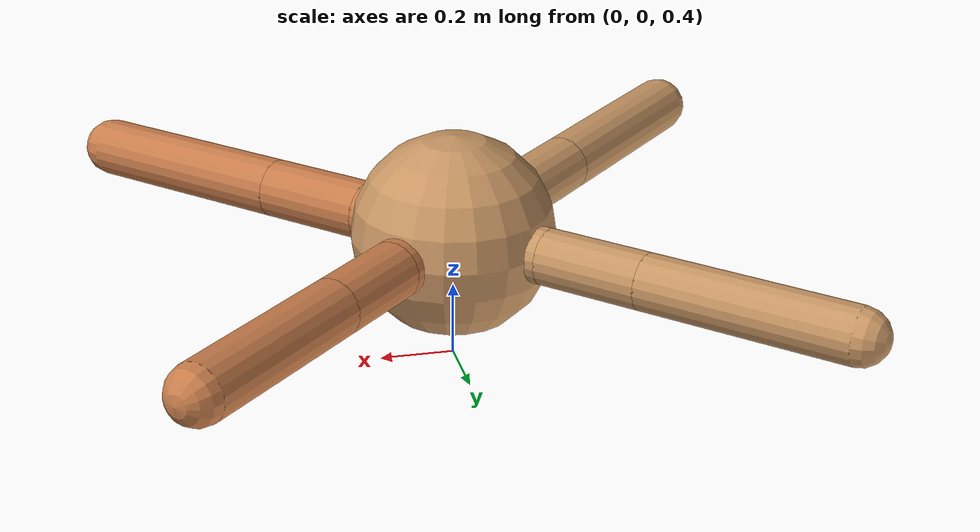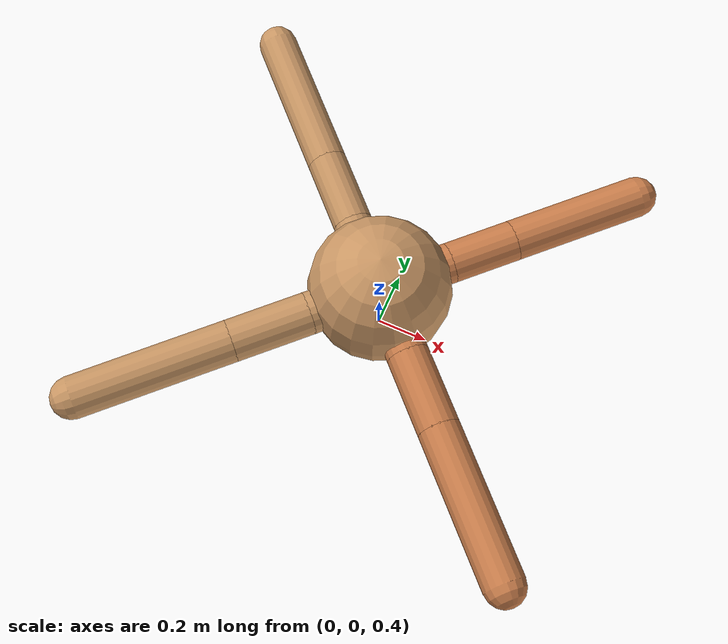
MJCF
<?xml version="1.0" ?>
<mujoco model="ant">

	<compiler angle="degree" coordinate="local" inertiafromgeom="true"/>

	<option integrator="RK4" timestep="0.01"/>

	<custom>

		<numeric data="0.0 0.0 0.55 1.0 0.0 0.0 0.0 0.0 1.0 0.0 -1.0 0.0 -1.0 0.0 1.0" name="init_qpos"/>

	</custom>

	<default>

		<joint armature="1" damping="1" limited="true"/>

		<geom conaffinity="0" condim="3" density="5.0" friction="1.5 0.1 0.1" margin="0.01" rgba="0.8 0.6 0.4 1"/>

	</default>

	<worldbody>

		<body name="torso" pos="0 0 0.75">

			<geom name="torso_geom" pos="0 0 0" size="0.27314779988957033" type="sphere"/>

			<!--joint armature="0" damping="0" limited="false" margin="0.01" name="root" pos="0 0 0" type="free"/-->

			<body name="front_left_leg" pos="0 0 0">

				<geom fromto="0 0 0 0.2 0.2 0" name="aux_1_geom" size="0.07778665469679098" type="capsule" rgba=".8 .5 .3 1"/>

				<body name="aux_1" pos="0.2 0.2 0">

					<joint axis="0 0 1" name="hip_1" pos="0.0 0.0 0.0" range="-40 40" type="hinge"/>

					<geom fromto="0 0 0 0.18135167400803154 0.18135167400803154 0" name="left_leg_geom" size="0.07778665469679098" type="capsule" rgba=".8 .5 .3 1"/>

					<body pos="0.18135167400803154 0.18135167400803154 0" name="front_left_foot">

						<joint axis="-1 1 0" name="ankle_1" pos="0.0 0.0 0.0" range="30 100" type="hinge"/>

						<geom fromto="0 0 0 0.3627033480160631 0.3627033480160631 0" name="left_ankle_geom" size="0.07778665469679098" type="capsule" rgba=".8 .5 .3 1"/>

					</body>

				</body>

			</body>

			<body name="front_right_leg" pos="0 0 0">

				<geom fromto="0 0 0 -0.2 0.2 0" name="aux_2_geom" size="0.07496647735807126" type="capsule"/>

				<body name="aux_2" pos="-0.2 0.2 0">

					<joint axis="0 0 1" name="hip_2" pos="0.0 0.0 0.0" range="-40 40" type="hinge"/>

					<geom fromto="0 0 0 -0.1985237699356004 0.1985237699356004 0" name="right_leg_geom" size="0.07496647735807126" type="capsule"/>

					<body pos="-0.1985237699356004 0.1985237699356004 0" name="front_right_foot">

						<joint axis="1 1 0" name="ankle_2" pos="0.0 0.0 0.0" range="-100 -30" type="hinge"/>

						<geom fromto="0 0 0 -0.3970475398712008 0.3970475398712008 0" name="right_ankle_geom" size="0.07496647735807126" type="capsule"/>

					</body>

				</body>

			</body>

			<body name="left_back_leg" pos="0 0 0">

				<geom fromto="0 0 0 -0.2 -0.2 0" name="aux_3_geom" size="0.08139243750693678" type="capsule"/>

				<body name="aux_3" pos="-0.2 -0.2 0">

					<joint axis="0 0 1" name="hip_3" pos="0.0 0.0 0.0" range="-40 40" type="hinge"/>

					<geom fromto="0 0 0 -0.21569208466020623 -0.21569208466020623 0" name="back_leg_geom" size="0.08139243750693678" type="capsule"/>

					<body pos="-0.21569208466020623 -0.21569208466020623 0" name="left_back_foot">

						<joint axis="-1 1 0" name="ankle_3" pos="0.0 0.0 0.0" range="-100 -30" type="hinge"/>

						<geom fromto="0 0 0 -0.43138416932041246 -0.43138416932041246 0" name="third_ankle_geom" size="0.08139243750693678" type="capsule"/>

					</body>

				</body>

			</body>

			<body name="right_back_leg" pos="0 0 0">

				<geom fromto="0 0 0 0.2 -0.2 0" name="aux_4_geom" size="0.08028266678807101" type="capsule" rgba=".8 .5 .3 1"/>

				<body name="aux_4" pos="0.2 -0.2 0">

					<joint axis="0 0 1" name="hip_4" pos="0.0 0.0 0.0" range="-40 40" type="hinge"/>

					<geom fromto="0 0 0 0.21330508759919875 -0.21330508759919875 0" name="rightback_leg_geom" size="0.08028266678807101" type="capsule" rgba=".8 .5 .3 1"/>

					<body pos="0.21330508759919875 -0.21330508759919875 0" name="right_back_foot">

						<joint axis="1 1 0" name="ankle_4" pos="0.0 0.0 0.0" range="30 100" type="hinge"/>

						<geom fromto="0 0 0 0.4266101751983975 -0.4266101751983975 0" name="fourth_ankle_geom" size="0.08028266678807101" type="capsule" rgba=".8 .5 .3 1"/>

					</body>

				</body>

			</body>

		</body>

	</worldbody>

	<actuator>

		<motor ctrllimited="true" ctrlrange="-1.0 1.0" joint="hip_4" gear="150"/>

		<motor ctrllimited="true" ctrlrange="-1.0 1.0" joint="ankle_4" gear="150"/>

		<motor ctrllimited="true" ctrlrange="-1.0 1.0" joint="hip_1" gear="150"/>

		<motor ctrllimited="true" ctrlrange="-1.0 1.0" joint="ankle_1" gear="150"/>

		<motor ctrllimited="true" ctrlrange="-1.0 1.0" joint="hip_2" gear="150"/>

		<motor ctrllimited="true" ctrlrange="-1.0 1.0" joint="ankle_2" gear="150"/>

		<motor ctrllimited="true" ctrlrange="-1.0 1.0" joint="hip_3" gear="150"/>

		<motor ctrllimited="true" ctrlrange="-1.0 1.0" joint="ankle_3" gear="150"/>

	</actuator>

</mujoco>
